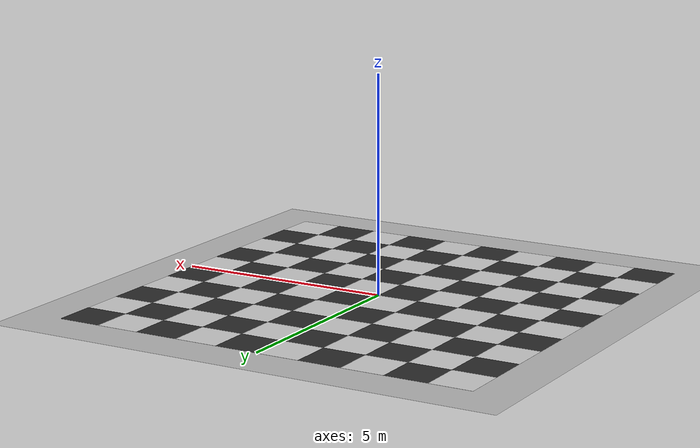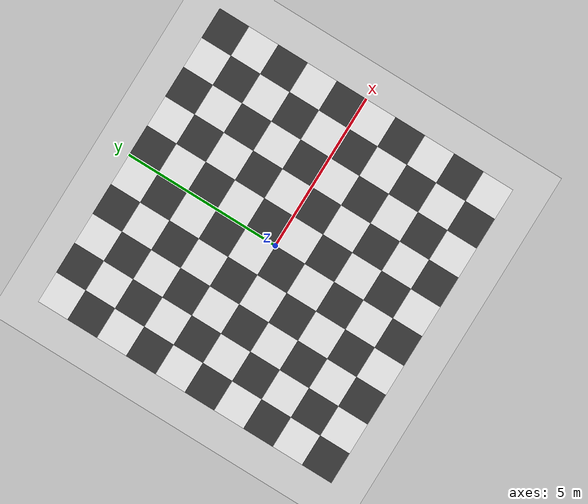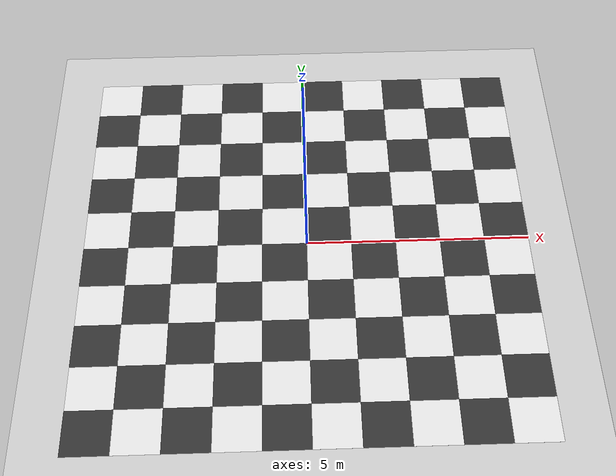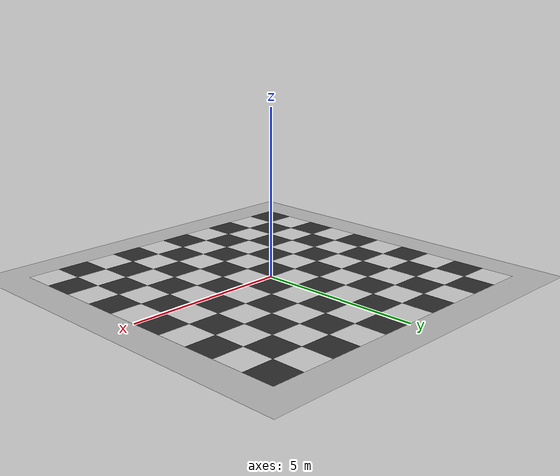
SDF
<?xml version="1.0" encoding="UTF-8"?>
<sdf version="1.9">
  <world name="default">
    <physics type="ode">
      <max_step_size>0.008</max_step_size>
      <real_time_factor>1.0</real_time_factor>
      <real_time_update_rate>125</real_time_update_rate>
    </physics>
    <gravity>0 0 -9.8</gravity>
    <magnetic_field>6e-06 2.3e-05 -4.2e-05</magnetic_field>
    <atmosphere type="adiabatic"/>
    <scene>
      <grid>false</grid>
      <ambient>0.4 0.4 0.4 1</ambient>
      <background>0.7 0.7 0.7 1</background>
      <shadows>true</shadows>
    </scene>

    <!-- Ground plane (collision only) -->
    <model name="ground_plane">
      <static>true</static>
      <link name="link">
        <collision name="collision">
          <geometry>
            <plane>
              <normal>0 0 1</normal>
              <size>1 1</size>
            </plane>
          </geometry>
          <surface>
            <friction><ode/></friction>
            <bounce/>
            <contact/>
          </surface>
        </collision>
        <visual name="visual">
          <geometry>
            <plane>
              <normal>0 0 1</normal>
              <size>500 500</size>
            </plane>
          </geometry>
          <material>
            <ambient>0.8 0.8 0.8 1</ambient>
            <diffuse>0.8 0.8 0.8 1</diffuse>
            <specular>0.8 0.8 0.8 1</specular>
          </material>
        </visual>
        <pose>0 0 0 0 0 0</pose>
        <inertial>
          <pose>0 0 0 0 0 0</pose>
          <mass>1</mass>
          <inertia>
            <ixx>1</ixx><ixy>0</ixy><ixz>0</ixz>
            <iyy>1</iyy><iyz>0</iyz><izz>1</izz>
          </inertia>
        </inertial>
        <enable_wind>false</enable_wind>
      </link>
      <pose>0 0 0 0 0 0</pose>
      <self_collide>false</self_collide>
    </model>

    <model name="floor_tiles">
      <static>true</static>
      <pose>0 0 0.001 0 0 0</pose>
      <link name="tiles">
        <!-- Row -5 -->
        <visual name="tile_n5_n5"><pose>-4.5 -4.5 0 0 0 0</pose><geometry><box><size>1 1 0.001</size></box></geometry><material><ambient>0.2 0.2 0.2 1</ambient><diffuse>0.2 0.2 0.2 1</diffuse></material></visual>
        <visual name="tile_n5_n4"><pose>-4.5 -3.5 0 0 0 0</pose><geometry><box><size>1 1 0.001</size></box></geometry><material><ambient>0.9 0.9 0.9 1</ambient><diffuse>0.9 0.9 0.9 1</diffuse></material></visual>
        <visual name="tile_n5_n3"><pose>-4.5 -2.5 0 0 0 0</pose><geometry><box><size>1 1 0.001</size></box></geometry><material><ambient>0.2 0.2 0.2 1</ambient><diffuse>0.2 0.2 0.2 1</diffuse></material></visual>
        <visual name="tile_n5_n2"><pose>-4.5 -1.5 0 0 0 0</pose><geometry><box><size>1 1 0.001</size></box></geometry><material><ambient>0.9 0.9 0.9 1</ambient><diffuse>0.9 0.9 0.9 1</diffuse></material></visual>
        <visual name="tile_n5_n1"><pose>-4.5 -0.5 0 0 0 0</pose><geometry><box><size>1 1 0.001</size></box></geometry><material><ambient>0.2 0.2 0.2 1</ambient><diffuse>0.2 0.2 0.2 1</diffuse></material></visual>
        <visual name="tile_n5_0"><pose>-4.5 0.5 0 0 0 0</pose><geometry><box><size>1 1 0.001</size></box></geometry><material><ambient>0.9 0.9 0.9 1</ambient><diffuse>0.9 0.9 0.9 1</diffuse></material></visual>
        <visual name="tile_n5_1"><pose>-4.5 1.5 0 0 0 0</pose><geometry><box><size>1 1 0.001</size></box></geometry><material><ambient>0.2 0.2 0.2 1</ambient><diffuse>0.2 0.2 0.2 1</diffuse></material></visual>
        <visual name="tile_n5_2"><pose>-4.5 2.5 0 0 0 0</pose><geometry><box><size>1 1 0.001</size></box></geometry><material><ambient>0.9 0.9 0.9 1</ambient><diffuse>0.9 0.9 0.9 1</diffuse></material></visual>
        <visual name="tile_n5_3"><pose>-4.5 3.5 0 0 0 0</pose><geometry><box><size>1 1 0.001</size></box></geometry><material><ambient>0.2 0.2 0.2 1</ambient><diffuse>0.2 0.2 0.2 1</diffuse></material></visual>
        <visual name="tile_n5_4"><pose>-4.5 4.5 0 0 0 0</pose><geometry><box><size>1 1 0.001</size></box></geometry><material><ambient>0.9 0.9 0.9 1</ambient><diffuse>0.9 0.9 0.9 1</diffuse></material></visual>

        <!-- Row -4 -->
        <visual name="tile_n4_n5"><pose>-3.5 -4.5 0 0 0 0</pose><geometry><box><size>1 1 0.001</size></box></geometry><material><ambient>0.9 0.9 0.9 1</ambient><diffuse>0.9 0.9 0.9 1</diffuse></material></visual>
        <visual name="tile_n4_n4"><pose>-3.5 -3.5 0 0 0 0</pose><geometry><box><size>1 1 0.001</size></box></geometry><material><ambient>0.2 0.2 0.2 1</ambient><diffuse>0.2 0.2 0.2 1</diffuse></material></visual>
        <visual name="tile_n4_n3"><pose>-3.5 -2.5 0 0 0 0</pose><geometry><box><size>1 1 0.001</size></box></geometry><material><ambient>0.9 0.9 0.9 1</ambient><diffuse>0.9 0.9 0.9 1</diffuse></material></visual>
        <visual name="tile_n4_n2"><pose>-3.5 -1.5 0 0 0 0</pose><geometry><box><size>1 1 0.001</size></box></geometry><material><ambient>0.2 0.2 0.2 1</ambient><diffuse>0.2 0.2 0.2 1</diffuse></material></visual>
        <visual name="tile_n4_n1"><pose>-3.5 -0.5 0 0 0 0</pose><geometry><box><size>1 1 0.001</size></box></geometry><material><ambient>0.9 0.9 0.9 1</ambient><diffuse>0.9 0.9 0.9 1</diffuse></material></visual>
        <visual name="tile_n4_0"><pose>-3.5 0.5 0 0 0 0</pose><geometry><box><size>1 1 0.001</size></box></geometry><material><ambient>0.2 0.2 0.2 1</ambient><diffuse>0.2 0.2 0.2 1</diffuse></material></visual>
        <visual name="tile_n4_1"><pose>-3.5 1.5 0 0 0 0</pose><geometry><box><size>1 1 0.001</size></box></geometry><material><ambient>0.9 0.9 0.9 1</ambient><diffuse>0.9 0.9 0.9 1</diffuse></material></visual>
        <visual name="tile_n4_2"><pose>-3.5 2.5 0 0 0 0</pose><geometry><box><size>1 1 0.001</size></box></geometry><material><ambient>0.2 0.2 0.2 1</ambient><diffuse>0.2 0.2 0.2 1</diffuse></material></visual>
        <visual name="tile_n4_3"><pose>-3.5 3.5 0 0 0 0</pose><geometry><box><size>1 1 0.001</size></box></geometry><material><ambient>0.9 0.9 0.9 1</ambient><diffuse>0.9 0.9 0.9 1</diffuse></material></visual>
        <visual name="tile_n4_4"><pose>-3.5 4.5 0 0 0 0</pose><geometry><box><size>1 1 0.001</size></box></geometry><material><ambient>0.2 0.2 0.2 1</ambient><diffuse>0.2 0.2 0.2 1</diffuse></material></visual>

        <!-- Row -3 -->
        <visual name="tile_n3_n5"><pose>-2.5 -4.5 0 0 0 0</pose><geometry><box><size>1 1 0.001</size></box></geometry><material><ambient>0.2 0.2 0.2 1</ambient><diffuse>0.2 0.2 0.2 1</diffuse></material></visual>
        <visual name="tile_n3_n4"><pose>-2.5 -3.5 0 0 0 0</pose><geometry><box><size>1 1 0.001</size></box></geometry><material><ambient>0.9 0.9 0.9 1</ambient><diffuse>0.9 0.9 0.9 1</diffuse></material></visual>
        <visual name="tile_n3_n3"><pose>-2.5 -2.5 0 0 0 0</pose><geometry><box><size>1 1 0.001</size></box></geometry><material><ambient>0.2 0.2 0.2 1</ambient><diffuse>0.2 0.2 0.2 1</diffuse></material></visual>
        <visual name="tile_n3_n2"><pose>-2.5 -1.5 0 0 0 0</pose><geometry><box><size>1 1 0.001</size></box></geometry><material><ambient>0.9 0.9 0.9 1</ambient><diffuse>0.9 0.9 0.9 1</diffuse></material></visual>
        <visual name="tile_n3_n1"><pose>-2.5 -0.5 0 0 0 0</pose><geometry><box><size>1 1 0.001</size></box></geometry><material><ambient>0.2 0.2 0.2 1</ambient><diffuse>0.2 0.2 0.2 1</diffuse></material></visual>
        <visual name="tile_n3_0"><pose>-2.5 0.5 0 0 0 0</pose><geometry><box><size>1 1 0.001</size></box></geometry><material><ambient>0.9 0.9 0.9 1</ambient><diffuse>0.9 0.9 0.9 1</diffuse></material></visual>
        <visual name="tile_n3_1"><pose>-2.5 1.5 0 0 0 0</pose><geometry><box><size>1 1 0.001</size></box></geometry><material><ambient>0.2 0.2 0.2 1</ambient><diffuse>0.2 0.2 0.2 1</diffuse></material></visual>
        <visual name="tile_n3_2"><pose>-2.5 2.5 0 0 0 0</pose><geometry><box><size>1 1 0.001</size></box></geometry><material><ambient>0.9 0.9 0.9 1</ambient><diffuse>0.9 0.9 0.9 1</diffuse></material></visual>
        <visual name="tile_n3_3"><pose>-2.5 3.5 0 0 0 0</pose><geometry><box><size>1 1 0.001</size></box></geometry><material><ambient>0.2 0.2 0.2 1</ambient><diffuse>0.2 0.2 0.2 1</diffuse></material></visual>
        <visual name="tile_n3_4"><pose>-2.5 4.5 0 0 0 0</pose><geometry><box><size>1 1 0.001</size></box></geometry><material><ambient>0.9 0.9 0.9 1</ambient><diffuse>0.9 0.9 0.9 1</diffuse></material></visual>

        <!-- Row -2 -->
        <visual name="tile_n2_n5"><pose>-1.5 -4.5 0 0 0 0</pose><geometry><box><size>1 1 0.001</size></box></geometry><material><ambient>0.9 0.9 0.9 1</ambient><diffuse>0.9 0.9 0.9 1</diffuse></material></visual>
        <visual name="tile_n2_n4"><pose>-1.5 -3.5 0 0 0 0</pose><geometry><box><size>1 1 0.001</size></box></geometry><material><ambient>0.2 0.2 0.2 1</ambient><diffuse>0.2 0.2 0.2 1</diffuse></material></visual>
        <visual name="tile_n2_n3"><pose>-1.5 -2.5 0 0 0 0</pose><geometry><box><size>1 1 0.001</size></box></geometry><material><ambient>0.9 0.9 0.9 1</ambient><diffuse>0.9 0.9 0.9 1</diffuse></material></visual>
        <visual name="tile_n2_n2"><pose>-1.5 -1.5 0 0 0 0</pose><geometry><box><size>1 1 0.001</size></box></geometry><material><ambient>0.2 0.2 0.2 1</ambient><diffuse>0.2 0.2 0.2 1</diffuse></material></visual>
        <visual name="tile_n2_n1"><pose>-1.5 -0.5 0 0 0 0</pose><geometry><box><size>1 1 0.001</size></box></geometry><material><ambient>0.9 0.9 0.9 1</ambient><diffuse>0.9 0.9 0.9 1</diffuse></material></visual>
        <visual name="tile_n2_0"><pose>-1.5 0.5 0 0 0 0</pose><geometry><box><size>1 1 0.001</size></box></geometry><material><ambient>0.2 0.2 0.2 1</ambient><diffuse>0.2 0.2 0.2 1</diffuse></material></visual>
        <visual name="tile_n2_1"><pose>-1.5 1.5 0 0 0 0</pose><geometry><box><size>1 1 0.001</size></box></geometry><material><ambient>0.9 0.9 0.9 1</ambient><diffuse>0.9 0.9 0.9 1</diffuse></material></visual>
        <visual name="tile_n2_2"><pose>-1.5 2.5 0 0 0 0</pose><geometry><box><size>1 1 0.001</size></box></geometry><material><ambient>0.2 0.2 0.2 1</ambient><diffuse>0.2 0.2 0.2 1</diffuse></material></visual>
        <visual name="tile_n2_3"><pose>-1.5 3.5 0 0 0 0</pose><geometry><box><size>1 1 0.001</size></box></geometry><material><ambient>0.9 0.9 0.9 1</ambient><diffuse>0.9 0.9 0.9 1</diffuse></material></visual>
        <visual name="tile_n2_4"><pose>-1.5 4.5 0 0 0 0</pose><geometry><box><size>1 1 0.001</size></box></geometry><material><ambient>0.2 0.2 0.2 1</ambient><diffuse>0.2 0.2 0.2 1</diffuse></material></visual>

        <!-- Row -1 -->
        <visual name="tile_n1_n5"><pose>-0.5 -4.5 0 0 0 0</pose><geometry><box><size>1 1 0.001</size></box></geometry><material><ambient>0.2 0.2 0.2 1</ambient><diffuse>0.2 0.2 0.2 1</diffuse></material></visual>
        <visual name="tile_n1_n4"><pose>-0.5 -3.5 0 0 0 0</pose><geometry><box><size>1 1 0.001</size></box></geometry><material><ambient>0.9 0.9 0.9 1</ambient><diffuse>0.9 0.9 0.9 1</diffuse></material></visual>
        <visual name="tile_n1_n3"><pose>-0.5 -2.5 0 0 0 0</pose><geometry><box><size>1 1 0.001</size></box></geometry><material><ambient>0.2 0.2 0.2 1</ambient><diffuse>0.2 0.2 0.2 1</diffuse></material></visual>
        <visual name="tile_n1_n2"><pose>-0.5 -1.5 0 0 0 0</pose><geometry><box><size>1 1 0.001</size></box></geometry><material><ambient>0.9 0.9 0.9 1</ambient><diffuse>0.9 0.9 0.9 1</diffuse></material></visual>
        <visual name="tile_n1_n1"><pose>-0.5 -0.5 0 0 0 0</pose><geometry><box><size>1 1 0.001</size></box></geometry><material><ambient>0.2 0.2 0.2 1</ambient><diffuse>0.2 0.2 0.2 1</diffuse></material></visual>
        <visual name="tile_n1_0"><pose>-0.5 0.5 0 0 0 0</pose><geometry><box><size>1 1 0.001</size></box></geometry><material><ambient>0.9 0.9 0.9 1</ambient><diffuse>0.9 0.9 0.9 1</diffuse></material></visual>
        <visual name="tile_n1_1"><pose>-0.5 1.5 0 0 0 0</pose><geometry><box><size>1 1 0.001</size></box></geometry><material><ambient>0.2 0.2 0.2 1</ambient><diffuse>0.2 0.2 0.2 1</diffuse></material></visual>
        <visual name="tile_n1_2"><pose>-0.5 2.5 0 0 0 0</pose><geometry><box><size>1 1 0.001</size></box></geometry><material><ambient>0.9 0.9 0.9 1</ambient><diffuse>0.9 0.9 0.9 1</diffuse></material></visual>
        <visual name="tile_n1_3"><pose>-0.5 3.5 0 0 0 0</pose><geometry><box><size>1 1 0.001</size></box></geometry><material><ambient>0.2 0.2 0.2 1</ambient><diffuse>0.2 0.2 0.2 1</diffuse></material></visual>
        <visual name="tile_n1_4"><pose>-0.5 4.5 0 0 0 0</pose><geometry><box><size>1 1 0.001</size></box></geometry><material><ambient>0.9 0.9 0.9 1</ambient><diffuse>0.9 0.9 0.9 1</diffuse></material></visual>

        <!-- Row 0 -->
        <visual name="tile_0_n5"><pose>0.5 -4.5 0 0 0 0</pose><geometry><box><size>1 1 0.001</size></box></geometry><material><ambient>0.9 0.9 0.9 1</ambient><diffuse>0.9 0.9 0.9 1</diffuse></material></visual>
        <visual name="tile_0_n4"><pose>0.5 -3.5 0 0 0 0</pose><geometry><box><size>1 1 0.001</size></box></geometry><material><ambient>0.2 0.2 0.2 1</ambient><diffuse>0.2 0.2 0.2 1</diffuse></material></visual>
        <visual name="tile_0_n3"><pose>0.5 -2.5 0 0 0 0</pose><geometry><box><size>1 1 0.001</size></box></geometry><material><ambient>0.9 0.9 0.9 1</ambient><diffuse>0.9 0.9 0.9 1</diffuse></material></visual>
        <visual name="tile_0_n2"><pose>0.5 -1.5 0 0 0 0</pose><geometry><box><size>1 1 0.001</size></box></geometry><material><ambient>0.2 0.2 0.2 1</ambient><diffuse>0.2 0.2 0.2 1</diffuse></material></visual>
        <visual name="tile_0_n1"><pose>0.5 -0.5 0 0 0 0</pose><geometry><box><size>1 1 0.001</size></box></geometry><material><ambient>0.9 0.9 0.9 1</ambient><diffuse>0.9 0.9 0.9 1</diffuse></material></visual>
        <visual name="tile_0_0"><pose>0.5 0.5 0 0 0 0</pose><geometry><box><size>1 1 0.001</size></box></geometry><material><ambient>0.2 0.2 0.2 1</ambient><diffuse>0.2 0.2 0.2 1</diffuse></material></visual>
        <visual name="tile_0_1"><pose>0.5 1.5 0 0 0 0</pose><geometry><box><size>1 1 0.001</size></box></geometry><material><ambient>0.9 0.9 0.9 1</ambient><diffuse>0.9 0.9 0.9 1</diffuse></material></visual>
        <visual name="tile_0_2"><pose>0.5 2.5 0 0 0 0</pose><geometry><box><size>1 1 0.001</size></box></geometry><material><ambient>0.2 0.2 0.2 1</ambient><diffuse>0.2 0.2 0.2 1</diffuse></material></visual>
        <visual name="tile_0_3"><pose>0.5 3.5 0 0 0 0</pose><geometry><box><size>1 1 0.001</size></box></geometry><material><ambient>0.9 0.9 0.9 1</ambient><diffuse>0.9 0.9 0.9 1</diffuse></material></visual>
        <visual name="tile_0_4"><pose>0.5 4.5 0 0 0 0</pose><geometry><box><size>1 1 0.001</size></box></geometry><material><ambient>0.2 0.2 0.2 1</ambient><diffuse>0.2 0.2 0.2 1</diffuse></material></visual>

        <!-- Row 1 -->
        <visual name="tile_1_n5"><pose>1.5 -4.5 0 0 0 0</pose><geometry><box><size>1 1 0.001</size></box></geometry><material><ambient>0.2 0.2 0.2 1</ambient><diffuse>0.2 0.2 0.2 1</diffuse></material></visual>
        <visual name="tile_1_n4"><pose>1.5 -3.5 0 0 0 0</pose><geometry><box><size>1 1 0.001</size></box></geometry><material><ambient>0.9 0.9 0.9 1</ambient><diffuse>0.9 0.9 0.9 1</diffuse></material></visual>
        <visual name="tile_1_n3"><pose>1.5 -2.5 0 0 0 0</pose><geometry><box><size>1 1 0.001</size></box></geometry><material><ambient>0.2 0.2 0.2 1</ambient><diffuse>0.2 0.2 0.2 1</diffuse></material></visual>
        <visual name="tile_1_n2"><pose>1.5 -1.5 0 0 0 0</pose><geometry><box><size>1 1 0.001</size></box></geometry><material><ambient>0.9 0.9 0.9 1</ambient><diffuse>0.9 0.9 0.9 1</diffuse></material></visual>
        <visual name="tile_1_n1"><pose>1.5 -0.5 0 0 0 0</pose><geometry><box><size>1 1 0.001</size></box></geometry><material><ambient>0.2 0.2 0.2 1</ambient><diffuse>0.2 0.2 0.2 1</diffuse></material></visual>
        <visual name="tile_1_0"><pose>1.5 0.5 0 0 0 0</pose><geometry><box><size>1 1 0.001</size></box></geometry><material><ambient>0.9 0.9 0.9 1</ambient><diffuse>0.9 0.9 0.9 1</diffuse></material></visual>
        <visual name="tile_1_1"><pose>1.5 1.5 0 0 0 0</pose><geometry><box><size>1 1 0.001</size></box></geometry><material><ambient>0.2 0.2 0.2 1</ambient><diffuse>0.2 0.2 0.2 1</diffuse></material></visual>
        <visual name="tile_1_2"><pose>1.5 2.5 0 0 0 0</pose><geometry><box><size>1 1 0.001</size></box></geometry><material><ambient>0.9 0.9 0.9 1</ambient><diffuse>0.9 0.9 0.9 1</diffuse></material></visual>
        <visual name="tile_1_3"><pose>1.5 3.5 0 0 0 0</pose><geometry><box><size>1 1 0.001</size></box></geometry><material><ambient>0.2 0.2 0.2 1</ambient><diffuse>0.2 0.2 0.2 1</diffuse></material></visual>
        <visual name="tile_1_4"><pose>1.5 4.5 0 0 0 0</pose><geometry><box><size>1 1 0.001</size></box></geometry><material><ambient>0.9 0.9 0.9 1</ambient><diffuse>0.9 0.9 0.9 1</diffuse></material></visual>

        <!-- Row 2 -->
        <visual name="tile_2_n5"><pose>2.5 -4.5 0 0 0 0</pose><geometry><box><size>1 1 0.001</size></box></geometry><material><ambient>0.9 0.9 0.9 1</ambient><diffuse>0.9 0.9 0.9 1</diffuse></material></visual>
        <visual name="tile_2_n4"><pose>2.5 -3.5 0 0 0 0</pose><geometry><box><size>1 1 0.001</size></box></geometry><material><ambient>0.2 0.2 0.2 1</ambient><diffuse>0.2 0.2 0.2 1</diffuse></material></visual>
        <visual name="tile_2_n3"><pose>2.5 -2.5 0 0 0 0</pose><geometry><box><size>1 1 0.001</size></box></geometry><material><ambient>0.9 0.9 0.9 1</ambient><diffuse>0.9 0.9 0.9 1</diffuse></material></visual>
        <visual name="tile_2_n2"><pose>2.5 -1.5 0 0 0 0</pose><geometry><box><size>1 1 0.001</size></box></geometry><material><ambient>0.2 0.2 0.2 1</ambient><diffuse>0.2 0.2 0.2 1</diffuse></material></visual>
        <visual name="tile_2_n1"><pose>2.5 -0.5 0 0 0 0</pose><geometry><box><size>1 1 0.001</size></box></geometry><material><ambient>0.9 0.9 0.9 1</ambient><diffuse>0.9 0.9 0.9 1</diffuse></material></visual>
        <visual name="tile_2_0"><pose>2.5 0.5 0 0 0 0</pose><geometry><box><size>1 1 0.001</size></box></geometry><material><ambient>0.2 0.2 0.2 1</ambient><diffuse>0.2 0.2 0.2 1</diffuse></material></visual>
        <visual name="tile_2_1"><pose>2.5 1.5 0 0 0 0</pose><geometry><box><size>1 1 0.001</size></box></geometry><material><ambient>0.9 0.9 0.9 1</ambient><diffuse>0.9 0.9 0.9 1</diffuse></material></visual>
        <visual name="tile_2_2"><pose>2.5 2.5 0 0 0 0</pose><geometry><box><size>1 1 0.001</size></box></geometry><material><ambient>0.2 0.2 0.2 1</ambient><diffuse>0.2 0.2 0.2 1</diffuse></material></visual>
        <visual name="tile_2_3"><pose>2.5 3.5 0 0 0 0</pose><geometry><box><size>1 1 0.001</size></box></geometry><material><ambient>0.9 0.9 0.9 1</ambient><diffuse>0.9 0.9 0.9 1</diffuse></material></visual>
        <visual name="tile_2_4"><pose>2.5 4.5 0 0 0 0</pose><geometry><box><size>1 1 0.001</size></box></geometry><material><ambient>0.2 0.2 0.2 1</ambient><diffuse>0.2 0.2 0.2 1</diffuse></material></visual>

        <!-- Row 3 -->
        <visual name="tile_3_n5"><pose>3.5 -4.5 0 0 0 0</pose><geometry><box><size>1 1 0.001</size></box></geometry><material><ambient>0.2 0.2 0.2 1</ambient><diffuse>0.2 0.2 0.2 1</diffuse></material></visual>
        <visual name="tile_3_n4"><pose>3.5 -3.5 0 0 0 0</pose><geometry><box><size>1 1 0.001</size></box></geometry><material><ambient>0.9 0.9 0.9 1</ambient><diffuse>0.9 0.9 0.9 1</diffuse></material></visual>
        <visual name="tile_3_n3"><pose>3.5 -2.5 0 0 0 0</pose><geometry><box><size>1 1 0.001</size></box></geometry><material><ambient>0.2 0.2 0.2 1</ambient><diffuse>0.2 0.2 0.2 1</diffuse></material></visual>
        <visual name="tile_3_n2"><pose>3.5 -1.5 0 0 0 0</pose><geometry><box><size>1 1 0.001</size></box></geometry><material><ambient>0.9 0.9 0.9 1</ambient><diffuse>0.9 0.9 0.9 1</diffuse></material></visual>
        <visual name="tile_3_n1"><pose>3.5 -0.5 0 0 0 0</pose><geometry><box><size>1 1 0.001</size></box></geometry><material><ambient>0.2 0.2 0.2 1</ambient><diffuse>0.2 0.2 0.2 1</diffuse></material></visual>
        <visual name="tile_3_0"><pose>3.5 0.5 0 0 0 0</pose><geometry><box><size>1 1 0.001</size></box></geometry><material><ambient>0.9 0.9 0.9 1</ambient><diffuse>0.9 0.9 0.9 1</diffuse></material></visual>
        <visual name="tile_3_1"><pose>3.5 1.5 0 0 0 0</pose><geometry><box><size>1 1 0.001</size></box></geometry><material><ambient>0.2 0.2 0.2 1</ambient><diffuse>0.2 0.2 0.2 1</diffuse></material></visual>
        <visual name="tile_3_2"><pose>3.5 2.5 0 0 0 0</pose><geometry><box><size>1 1 0.001</size></box></geometry><material><ambient>0.9 0.9 0.9 1</ambient><diffuse>0.9 0.9 0.9 1</diffuse></material></visual>
        <visual name="tile_3_3"><pose>3.5 3.5 0 0 0 0</pose><geometry><box><size>1 1 0.001</size></box></geometry><material><ambient>0.2 0.2 0.2 1</ambient><diffuse>0.2 0.2 0.2 1</diffuse></material></visual>
        <visual name="tile_3_4"><pose>3.5 4.5 0 0 0 0</pose><geometry><box><size>1 1 0.001</size></box></geometry><material><ambient>0.9 0.9 0.9 1</ambient><diffuse>0.9 0.9 0.9 1</diffuse></material></visual>

        <!-- Row 4 -->
        <visual name="tile_4_n5"><pose>4.5 -4.5 0 0 0 0</pose><geometry><box><size>1 1 0.001</size></box></geometry><material><ambient>0.9 0.9 0.9 1</ambient><diffuse>0.9 0.9 0.9 1</diffuse></material></visual>
        <visual name="tile_4_n4"><pose>4.5 -3.5 0 0 0 0</pose><geometry><box><size>1 1 0.001</size></box></geometry><material><ambient>0.2 0.2 0.2 1</ambient><diffuse>0.2 0.2 0.2 1</diffuse></material></visual>
        <visual name="tile_4_n3"><pose>4.5 -2.5 0 0 0 0</pose><geometry><box><size>1 1 0.001</size></box></geometry><material><ambient>0.9 0.9 0.9 1</ambient><diffuse>0.9 0.9 0.9 1</diffuse></material></visual>
        <visual name="tile_4_n2"><pose>4.5 -1.5 0 0 0 0</pose><geometry><box><size>1 1 0.001</size></box></geometry><material><ambient>0.2 0.2 0.2 1</ambient><diffuse>0.2 0.2 0.2 1</diffuse></material></visual>
        <visual name="tile_4_n1"><pose>4.5 -0.5 0 0 0 0</pose><geometry><box><size>1 1 0.001</size></box></geometry><material><ambient>0.9 0.9 0.9 1</ambient><diffuse>0.9 0.9 0.9 1</diffuse></material></visual>
        <visual name="tile_4_0"><pose>4.5 0.5 0 0 0 0</pose><geometry><box><size>1 1 0.001</size></box></geometry><material><ambient>0.2 0.2 0.2 1</ambient><diffuse>0.2 0.2 0.2 1</diffuse></material></visual>
        <visual name="tile_4_1"><pose>4.5 1.5 0 0 0 0</pose><geometry><box><size>1 1 0.001</size></box></geometry><material><ambient>0.9 0.9 0.9 1</ambient><diffuse>0.9 0.9 0.9 1</diffuse></material></visual>
        <visual name="tile_4_2"><pose>4.5 2.5 0 0 0 0</pose><geometry><box><size>1 1 0.001</size></box></geometry><material><ambient>0.2 0.2 0.2 1</ambient><diffuse>0.2 0.2 0.2 1</diffuse></material></visual>
        <visual name="tile_4_3"><pose>4.5 3.5 0 0 0 0</pose><geometry><box><size>1 1 0.001</size></box></geometry><material><ambient>0.9 0.9 0.9 1</ambient><diffuse>0.9 0.9 0.9 1</diffuse></material></visual>
        <visual name="tile_4_4"><pose>4.5 4.5 0 0 0 0</pose><geometry><box><size>1 1 0.001</size></box></geometry><material><ambient>0.2 0.2 0.2 1</ambient><diffuse>0.2 0.2 0.2 1</diffuse></material></visual>
      </link>
    </model>

    <light name="sunUTC" type="directional">
      <pose>0 0 500 0 0 0</pose>
      <cast_shadows>true</cast_shadows>
      <intensity>1</intensity>
      <direction>0.001 0.625 -0.78</direction>
      <diffuse>0.904 0.904 0.904 1</diffuse>
      <specular>0.271 0.271 0.271 1</specular>
      <attenuation>
        <range>2000</range>
        <linear>0</linear>
        <constant>1</constant>
        <quadratic>0</quadratic>
      </attenuation>
      <spot>
        <inner_angle>0</inner_angle>
        <outer_angle>0</outer_angle>
        <falloff>0</falloff>
      </spot>
    </light>

    <spherical_coordinates>
      <surface_model>EARTH_WGS84</surface_model>
      <world_frame_orientation>ENU</world_frame_orientation>
      <latitude_deg>47.397971057728974</latitude_deg>
      <longitude_deg>8.546163739800146</longitude_deg>
      <elevation>0</elevation>
    </spherical_coordinates>
  </world>
</sdf>
